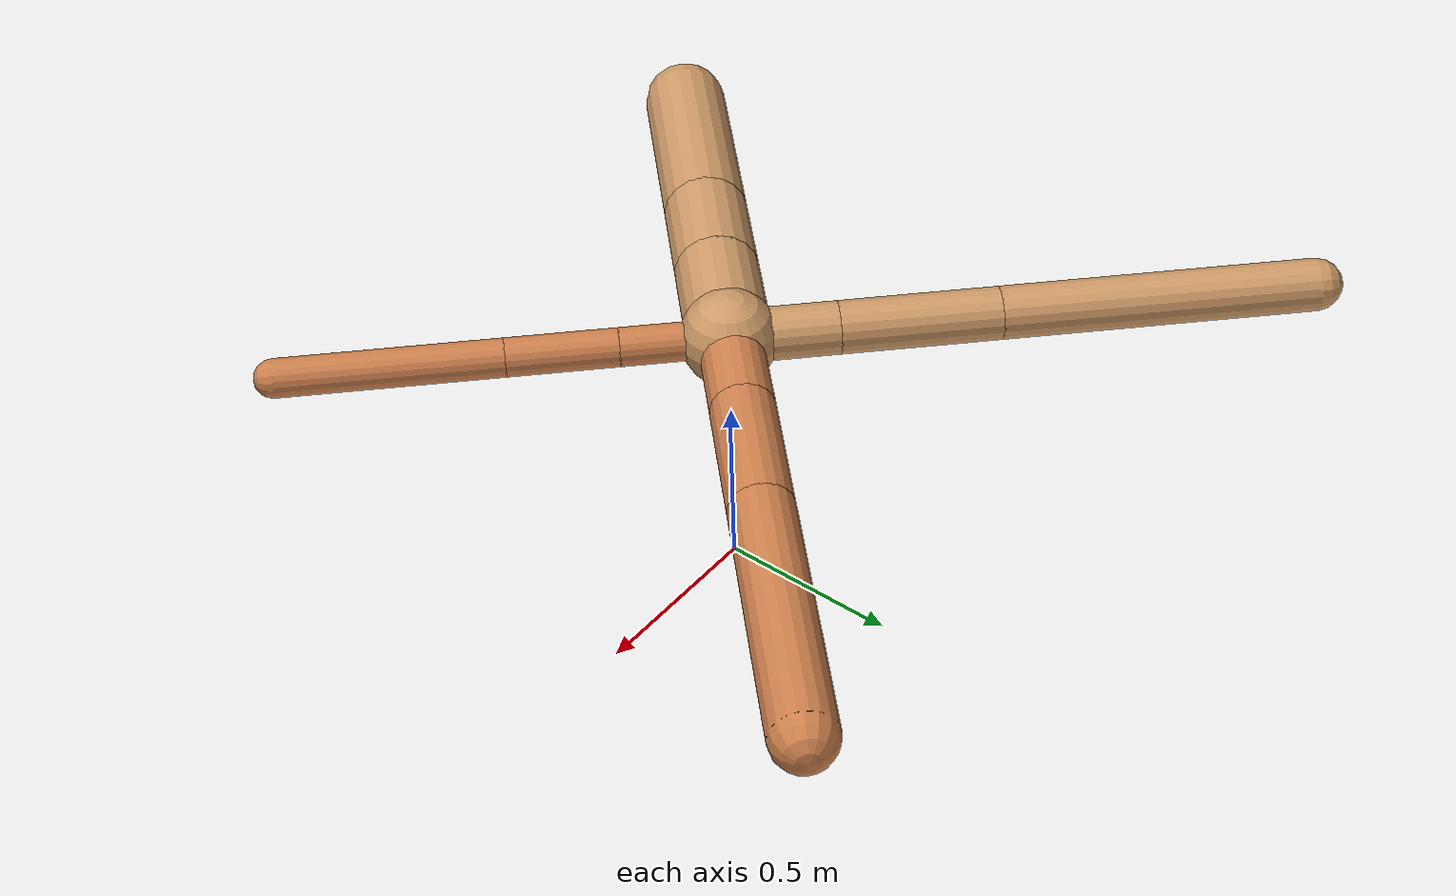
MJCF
<?xml version="1.0" ?>
<mujoco model="ant">

	<compiler angle="degree" coordinate="local" inertiafromgeom="true"/>

	<option integrator="RK4" timestep="0.01"/>

	<custom>

		<numeric data="0.0 0.0 0.55 1.0 0.0 0.0 0.0 0.0 1.0 0.0 -1.0 0.0 -1.0 0.0 1.0" name="init_qpos"/>

	</custom>

	<default>

		<joint armature="1" damping="1" limited="true"/>

		<geom conaffinity="0" condim="3" density="5.0" friction="1.5 0.1 0.1" margin="0.01" rgba="0.8 0.6 0.4 1"/>

	</default>

	<worldbody>

		<body name="torso" pos="0 0 0.75">

			<geom name="torso_geom" pos="0 0 0" size="0.12883055929597226" type="sphere"/>

			<!--joint armature="0" damping="0" limited="false" margin="0.01" name="root" pos="0 0 0" type="free"/-->

			<body name="front_left_leg" pos="0 0 0">

				<geom fromto="0 0 0 0.2 0.2 0" name="aux_1_geom" size="0.0840025864912957" type="capsule" rgba=".8 .5 .3 1"/>

				<body name="aux_1" pos="0.2 0.2 0">

					<joint axis="0 0 1" name="hip_1" pos="0.0 0.0 0.0" range="-40 40" type="hinge"/>

					<geom fromto="0 0 0 0.25770802549965616 0.25770802549965616 0" name="left_leg_geom" size="0.0840025864912957" type="capsule" rgba=".8 .5 .3 1"/>

					<body pos="0.25770802549965616 0.25770802549965616 0" name="front_left_foot">

						<joint axis="-1 1 0" name="ankle_1" pos="0.0 0.0 0.0" range="30 100" type="hinge"/>

						<geom fromto="0 0 0 0.5154160509993123 0.5154160509993123 0" name="left_ankle_geom" size="0.0840025864912957" type="capsule" rgba=".8 .5 .3 1"/>

					</body>

				</body>

			</body>

			<body name="front_right_leg" pos="0 0 0">

				<geom fromto="0 0 0 -0.2 0.2 0" name="aux_2_geom" size="0.06978172437342077" type="capsule"/>

				<body name="aux_2" pos="-0.2 0.2 0">

					<joint axis="0 0 1" name="hip_2" pos="0.0 0.0 0.0" range="-40 40" type="hinge"/>

					<geom fromto="0 0 0 -0.29842405253157406 0.29842405253157406 0" name="right_leg_geom" size="0.06978172437342077" type="capsule"/>

					<body pos="-0.29842405253157406 0.29842405253157406 0" name="front_right_foot">

						<joint axis="1 1 0" name="ankle_2" pos="0.0 0.0 0.0" range="-100 -30" type="hinge"/>

						<geom fromto="0 0 0 -0.5968481050631481 0.5968481050631481 0" name="right_ankle_geom" size="0.06978172437342077" type="capsule"/>

					</body>

				</body>

			</body>

			<body name="left_back_leg" pos="0 0 0">

				<geom fromto="0 0 0 -0.2 -0.2 0" name="aux_3_geom" size="0.11196959337928285" type="capsule"/>

				<body name="aux_3" pos="-0.2 -0.2 0">

					<joint axis="0 0 1" name="hip_3" pos="0.0 0.0 0.0" range="-40 40" type="hinge"/>

					<geom fromto="0 0 0 -0.18525781976750713 -0.18525781976750713 0" name="back_leg_geom" size="0.11196959337928285" type="capsule"/>

					<body pos="-0.18525781976750713 -0.18525781976750713 0" name="left_back_foot">

						<joint axis="-1 1 0" name="ankle_3" pos="0.0 0.0 0.0" range="-100 -30" type="hinge"/>

						<geom fromto="0 0 0 -0.37051563953501426 -0.37051563953501426 0" name="third_ankle_geom" size="0.11196959337928285" type="capsule"/>

					</body>

				</body>

			</body>

			<body name="right_back_leg" pos="0 0 0">

				<geom fromto="0 0 0 0.2 -0.2 0" name="aux_4_geom" size="0.05064418658458468" type="capsule" rgba=".8 .5 .3 1"/>

				<body name="aux_4" pos="0.2 -0.2 0">

					<joint axis="0 0 1" name="hip_4" pos="0.0 0.0 0.0" range="-40 40" type="hinge"/>

					<geom fromto="0 0 0 0.20515600576026222 -0.20515600576026222 0" name="rightback_leg_geom" size="0.05064418658458468" type="capsule" rgba=".8 .5 .3 1"/>

					<body pos="0.20515600576026222 -0.20515600576026222 0" name="right_back_foot">

						<joint axis="1 1 0" name="ankle_4" pos="0.0 0.0 0.0" range="30 100" type="hinge"/>

						<geom fromto="0 0 0 0.41031201152052443 -0.41031201152052443 0" name="fourth_ankle_geom" size="0.05064418658458468" type="capsule" rgba=".8 .5 .3 1"/>

					</body>

				</body>

			</body>

		</body>

	</worldbody>

	<actuator>

		<motor ctrllimited="true" ctrlrange="-1.0 1.0" joint="hip_4" gear="150"/>

		<motor ctrllimited="true" ctrlrange="-1.0 1.0" joint="ankle_4" gear="150"/>

		<motor ctrllimited="true" ctrlrange="-1.0 1.0" joint="hip_1" gear="150"/>

		<motor ctrllimited="true" ctrlrange="-1.0 1.0" joint="ankle_1" gear="150"/>

		<motor ctrllimited="true" ctrlrange="-1.0 1.0" joint="hip_2" gear="150"/>

		<motor ctrllimited="true" ctrlrange="-1.0 1.0" joint="ankle_2" gear="150"/>

		<motor ctrllimited="true" ctrlrange="-1.0 1.0" joint="hip_3" gear="150"/>

		<motor ctrllimited="true" ctrlrange="-1.0 1.0" joint="ankle_3" gear="150"/>

	</actuator>

</mujoco>
